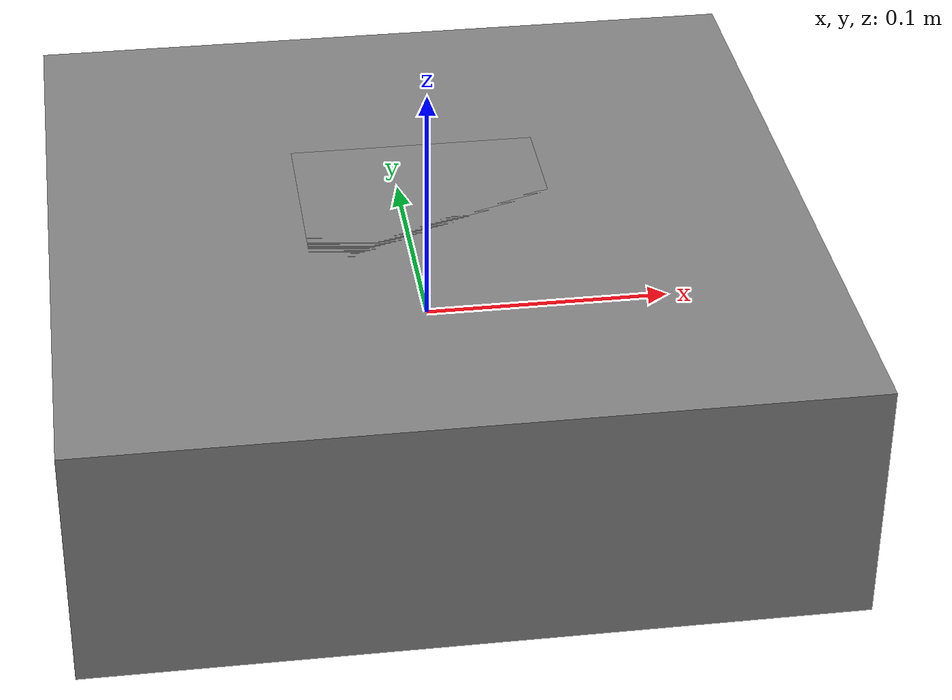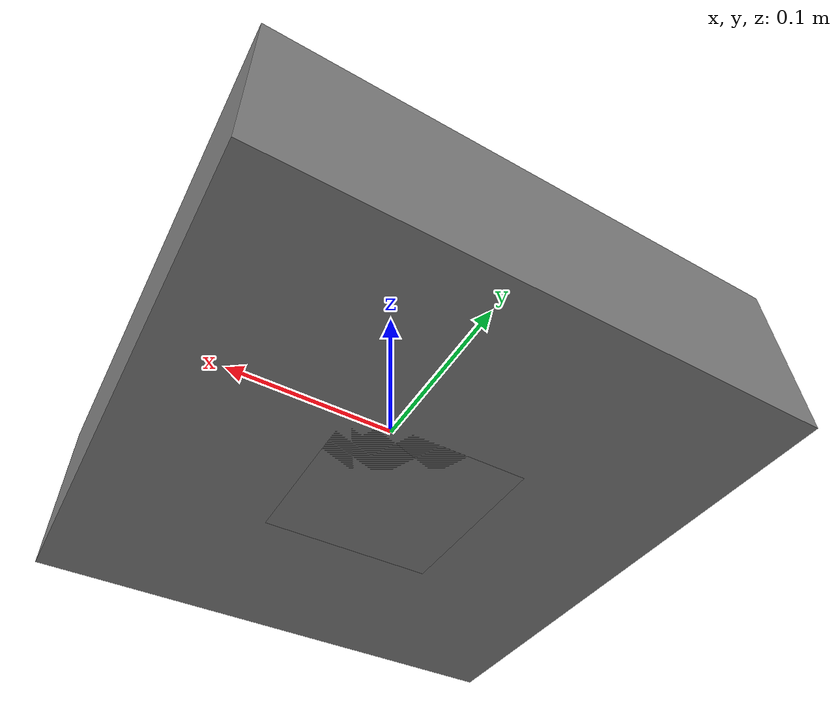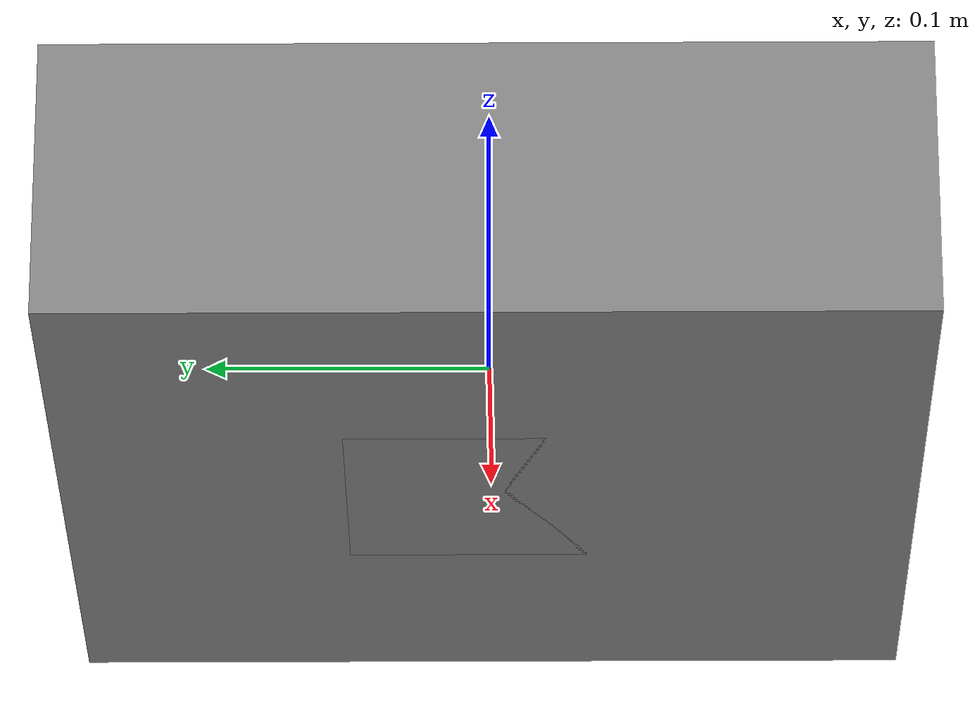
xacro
<robot name="robot2">
    <!-- Base link -->
    <link name="base_link">
        <visual>
            <geometry>
                <box size="0.3 0.3 0.1"/>
            </geometry>
            <material>
                <color rgba="0.5 0.5 0.5 1.0"/>
            </material>
        </visual>
    </link>

    <!-- Camera -->
    <link name="robot2_camera_frame">
        <visual>
            <geometry>
                <box size="0.1 0.1 0.1"/>
            </geometry>
            <material>
                <color rgba="0.5 0.5 0.5 1.0"/>
            </material>
        </visual>
    </link>

    <!-- Joint to attach camera -->
    <joint name="camera_joint" type="fixed">
        <parent link="base_link"/>
        <child link="robot2_camera_frame"/>
    </joint>

    <!-- Gazebo Plugin for Camera -->
    <gazebo>
        <plugin name="robot2_camera_plugin" filename="libgazebo_ros_camera.so">
            <update_rate>30.0</update_rate>
            <camera_name>robot2_camera</camera_name>
            <image_topic_name>/robot2/camera/image_raw</image_topic_name>
            <camera_info_topic_name>/robot2/camera/camera_info</camera_info_topic_name>
            <frame_name>robot2_camera_frame</frame_name>
            <hack_baseline>0.07</hack_baseline>
            <image_width>640</image_width>
            <image_height>480</image_height>
            <fov>1.047</fov>
            <clip>
                <near>0.1</near>
                <far>100.0</far>
            </clip>
        </plugin>
    </gazebo>
</robot>
